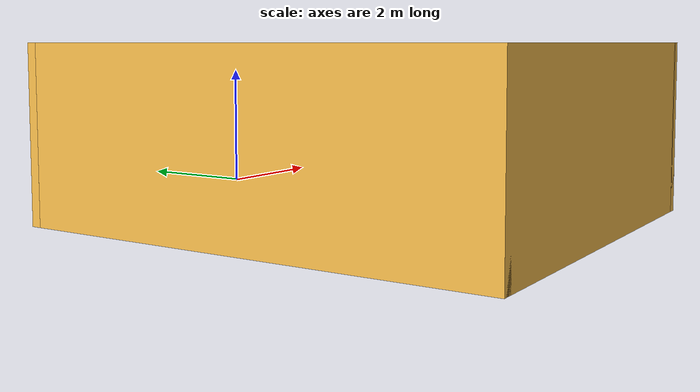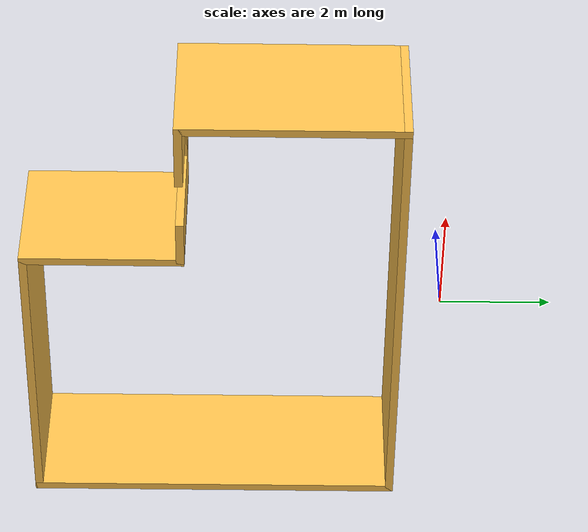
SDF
<?xml version='1.0'?>
<sdf version='1.6'>
  <model name='Map01'>
    <pose frame=''>-0.561 -4.162 0 0 -0 0</pose>
    <link name='Wall_10'>
      <collision name='Wall_10_Collision'>
        <geometry>
          <box>
            <size>3 0.15 2.5</size>
          </box>
        </geometry>
        <pose frame=''>0 0 1.25 0 -0 0</pose>
      </collision>
      <visual name='Wall_10_Visual'>
        <pose frame=''>0 0 1.25 0 -0 0</pose>
        <geometry>
          <box>
            <size>3 0.15 2.5</size>
          </box>
        </geometry>
        <material>
          <script>
            <uri>file://media/materials/scripts/gazebo.material</uri>
            <name>Gazebo/Grey</name>
          </script>
          <ambient>1 0.764706 0.305882 1</ambient>
        </material>
        <meta>
          <layer>0</layer>
        </meta>
      </visual>
      <pose frame=''>1.425 -2 0 0 -0 1.5708</pose>
    </link>
    <link name='Wall_12'>
      <pose frame=''>2.925 -0.575 0 0 -0 0</pose>
      <visual name='Wall_12_Visual_0'>
        <pose frame=''>-1.09608 0 1.25 0 -0 0</pose>
        <geometry>
          <box>
            <size>0.957847 0.15 2.5</size>
          </box>
        </geometry>
        <material>
          <script>
            <uri>file://media/materials/scripts/gazebo.material</uri>
            <name>Gazebo/Grey</name>
          </script>
          <ambient>1 0.764706 0.305882 1</ambient>
        </material>
        <meta>
          <layer>0</layer>
        </meta>
      </visual>
      <collision name='Wall_12_Collision_0'>
        <geometry>
          <box>
            <size>0.957847 0.15 2.5</size>
          </box>
        </geometry>
        <pose frame=''>-1.09608 0 1.25 0 -0 0</pose>
      </collision>
      <visual name='Wall_12_Visual_1'>
        <pose frame=''>0.928924 0 1.25 0 -0 0</pose>
        <geometry>
          <box>
            <size>1.29215 0.15 2.5</size>
          </box>
        </geometry>
        <material>
          <script>
            <uri>file://media/materials/scripts/gazebo.material</uri>
            <name>Gazebo/Grey</name>
          </script>
          <ambient>1 0.764706 0.305882 1</ambient>
        </material>
        <meta>
          <layer>0</layer>
        </meta>
      </visual>
      <collision name='Wall_12_Collision_1'>
        <geometry>
          <box>
            <size>1.29215 0.15 2.5</size>
          </box>
        </geometry>
        <pose frame=''>0.928924 0 1.25 0 -0 0</pose>
      </collision>
      <visual name='Wall_12_Visual_2'>
        <pose frame=''>-0.167153 0 2.25 0 -0 0</pose>
        <geometry>
          <box>
            <size>0.9 0.15 0.5</size>
          </box>
        </geometry>
        <material>
          <script>
            <uri>file://media/materials/scripts/gazebo.material</uri>
            <name>Gazebo/Grey</name>
          </script>
          <ambient>1 0.764706 0.305882 1</ambient>
        </material>
        <meta>
          <layer>0</layer>
        </meta>
      </visual>
      <collision name='Wall_12_Collision_2'>
        <geometry>
          <box>
            <size>0.9 0.15 0.5</size>
          </box>
        </geometry>
        <pose frame=''>-0.167153 0 2.25 0 -0 0</pose>
      </collision>
    </link>
    <link name='Wall_15'>
      <collision name='Wall_15_Collision'>
        <geometry>
          <box>
            <size>4.15 0.15 2.5</size>
          </box>
        </geometry>
        <pose frame=''>0 0 1.25 0 -0 0</pose>
      </collision>
      <visual name='Wall_15_Visual'>
        <pose frame=''>0 0 1.25 0 -0 0</pose>
        <geometry>
          <box>
            <size>4.15 0.15 2.5</size>
          </box>
        </geometry>
        <material>
          <script>
            <uri>file://media/materials/scripts/gazebo.material</uri>
            <name>Gazebo/Grey</name>
          </script>
          <ambient>1 0.764706 0.305882 1</ambient>
        </material>
        <meta>
          <layer>0</layer>
        </meta>
      </visual>
      <pose frame=''>4.425 1.425 0 0 -0 1.5708</pose>
    </link>
    <link name='Wall_4'>
      <collision name='Wall_4_Collision'>
        <geometry>
          <box>
            <size>9 0.15 2.5</size>
          </box>
        </geometry>
        <pose frame=''>0 0 1.25 0 -0 0</pose>
      </collision>
      <visual name='Wall_4_Visual'>
        <pose frame=''>0 0 1.25 0 -0 0</pose>
        <geometry>
          <box>
            <size>9 0.15 2.5</size>
          </box>
        </geometry>
        <material>
          <script>
            <uri>file://media/materials/scripts/gazebo.material</uri>
            <name>Gazebo/Grey</name>
          </script>
          <ambient>1 0.764706 0.305882 1</ambient>
        </material>
        <meta>
          <layer>0</layer>
        </meta>
      </visual>
      <pose frame=''>0 3.425 0 0 -0 0</pose>
    </link>
    <link name='Wall_6'>
      <collision name='Wall_6_Collision'>
        <geometry>
          <box>
            <size>7 0.15 2.5</size>
          </box>
        </geometry>
        <pose frame=''>0 0 1.25 0 -0 0</pose>
      </collision>
      <visual name='Wall_6_Visual'>
        <pose frame=''>0 0 1.25 0 -0 0</pose>
        <geometry>
          <box>
            <size>7 0.15 2.5</size>
          </box>
        </geometry>
        <material>
          <script>
            <uri>file://media/materials/scripts/gazebo.material</uri>
            <name>Gazebo/Grey</name>
          </script>
          <ambient>1 0.764706 0.305882 1</ambient>
        </material>
        <meta>
          <layer>0</layer>
        </meta>
      </visual>
      <pose frame=''>-4.425 0 0 0 0 -1.5708</pose>
    </link>
    <link name='Wall_8'>
      <collision name='Wall_8_Collision'>
        <geometry>
          <box>
            <size>6 0.15 2.5</size>
          </box>
        </geometry>
        <pose frame=''>0 0 1.25 0 -0 0</pose>
      </collision>
      <visual name='Wall_8_Visual'>
        <pose frame=''>0 0 1.25 0 -0 0</pose>
        <geometry>
          <box>
            <size>6 0.15 2.5</size>
          </box>
        </geometry>
        <material>
          <script>
            <uri>file://media/materials/scripts/gazebo.material</uri>
            <name>Gazebo/Grey</name>
          </script>
          <ambient>1 0.764706 0.305882 1</ambient>
        </material>
        <meta>
          <layer>0</layer>
        </meta>
      </visual>
      <pose frame=''>-1.5 -3.425 0 0 -0 0</pose>
    </link>
    <static>1</static>
  </model>
</sdf>
